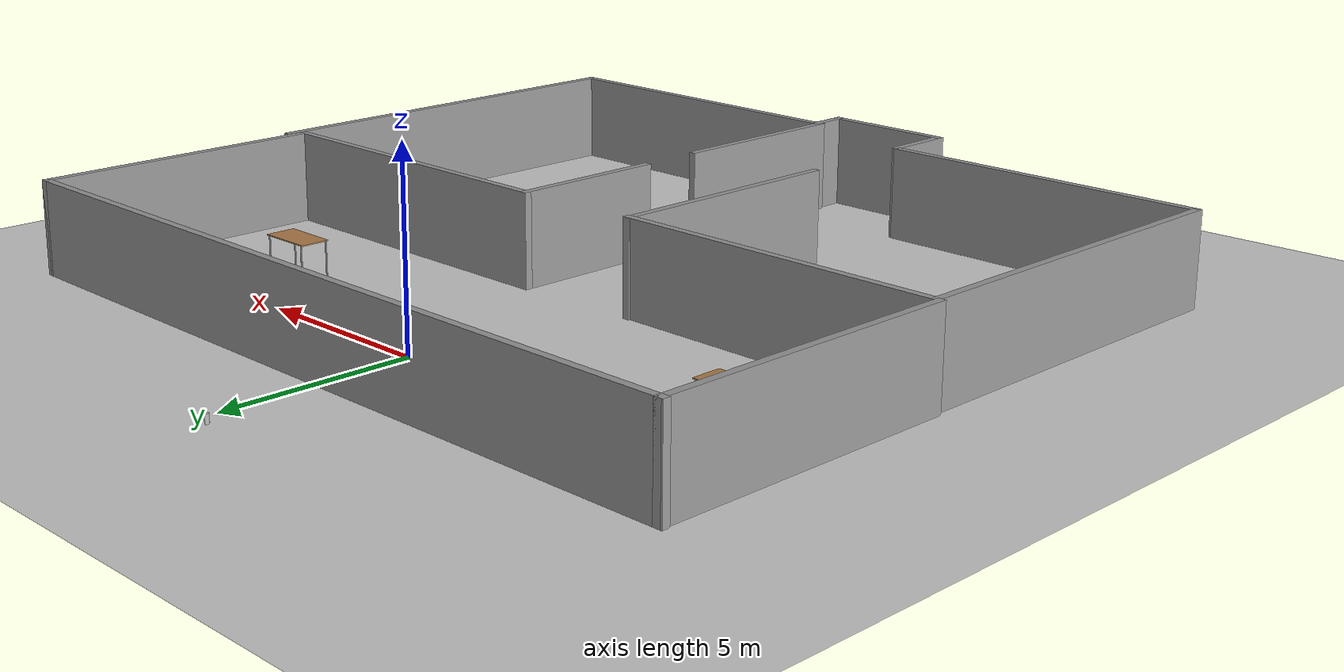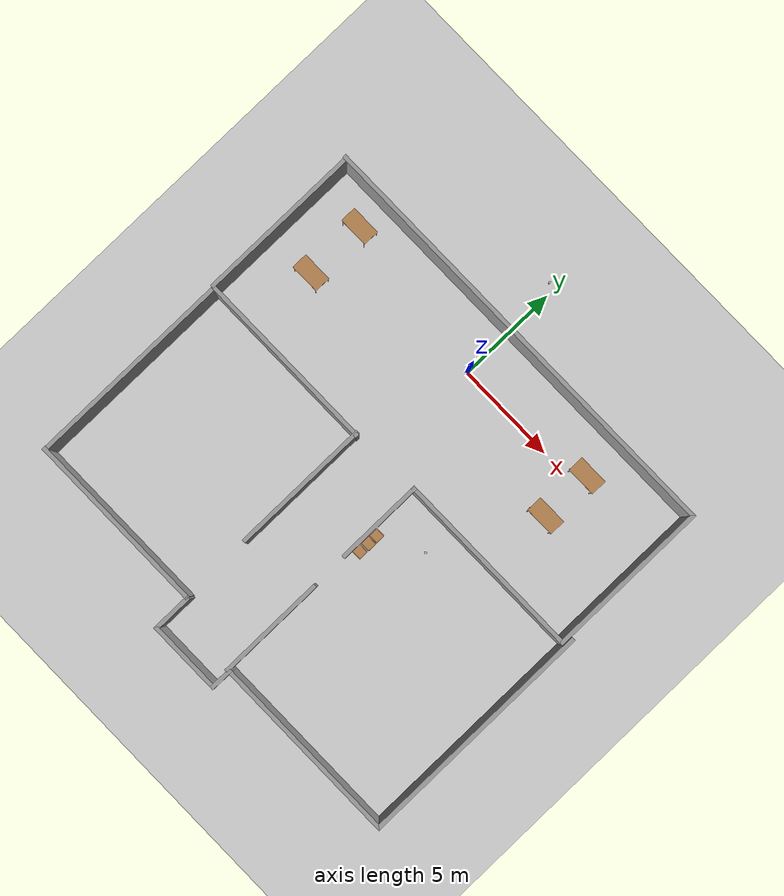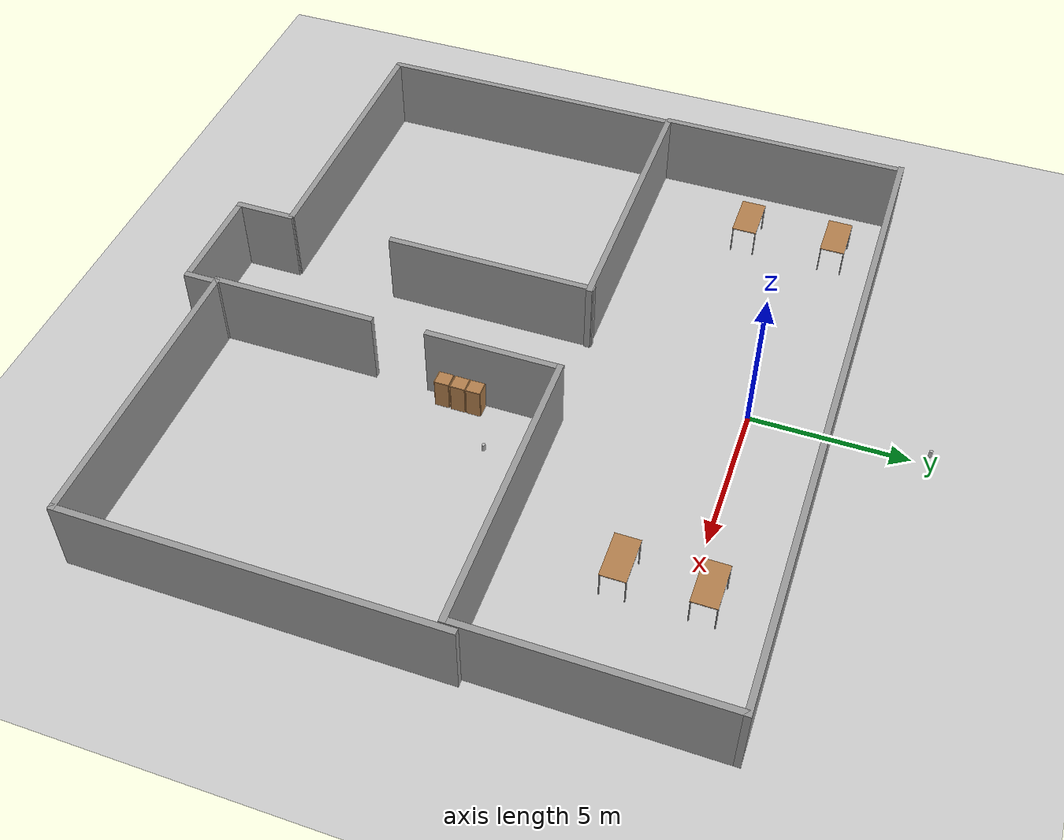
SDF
<sdf version="1.4">
 <world name="default">
  <light name="sun" type="directional">
   <pose>0 0 10 0 -0 0</pose>
   <diffuse>0.8 0.8 0.8 1</diffuse>
   <specular>0.2 0.2 0.2 1</specular>
   <attenuation>
    <range>1000</range>
    <constant>0.9</constant>
    <linear>0.01</linear>
    <quadratic>0.001</quadratic>
   </attenuation>
   <direction>-0.5 0.1 -0.9</direction>
  </light>
  <model name="ground_plane">
   <static>1</static>
   <link name="link">
    <collision name="collision">
     <geometry><plane><normal>0 0 1</normal><size>100 100</size></plane></geometry>
     <surface><friction><ode><mu>100</mu><mu2>50</mu2></ode></friction></surface>
    </collision>
    <visual name="visual">
     <cast_shadows>0</cast_shadows>
     <geometry><plane><normal>0 0 1</normal><size>100 100</size></plane></geometry>
     <material>
      <script><uri>file://media/materials/scripts/gazebo.material</uri><name>Gazebo/Grey</name></script>
     </material>
    </visual>
    <velocity_decay><linear>0</linear><angular>0</angular></velocity_decay>
   </link>
  </model>
  <physics type="ode">
   <max_step_size>0.001</max_step_size>
   <real_time_factor>1</real_time_factor>
   <real_time_update_rate>1000</real_time_update_rate>
   <gravity>0 0 -9.8</gravity>
  </physics>
  <scene><ambient>0.4 0.4 0.4 1</ambient><background>0.7 0.7 0.7 1</background><shadows>1</shadows></scene>
  <spherical_coordinates>
   <surface_model>EARTH_WGS84</surface_model>
   <latitude_deg>0</latitude_deg>
   <longitude_deg>0</longitude_deg>
   <elevation>0</elevation>
   <heading_deg>0</heading_deg>
  </spherical_coordinates>
  <model name="TEST2">
   <link name="Wall_50">
    <collision name="Wall_50_Collision">
     <geometry><box><size>21.9732 0.2 2.5</size></box></geometry>
     <pose>0 0 1.25 0 -0 0</pose>
    </collision>
    <visual name="Wall_50_Visual">
     <pose>0 0 1.25 0 -0 0</pose>
     <geometry><box><size>21.9732 0.2 2.5</size></box></geometry>
     <material>
      <script><uri>file://media/materials/scripts/gazebo.material</uri><name>Gazebo/Grey</name></script>
     </material>
    </visual>
    <velocity_decay><linear>0</linear><angular>0</angular></velocity_decay>
    <pose>-0.67806 9.43433 0 0 -0 0</pose>
   </link>
   <link name="Wall_51">
    <collision name="Wall_51_Collision">
     <geometry><box><size>8.10906 0.2 2.5</size></box></geometry>
     <pose>0 0 1.25 0 -0 0</pose>
    </collision>
    <visual name="Wall_51_Visual">
     <pose>0 0 1.25 0 -0 0</pose>
     <geometry><box><size>8.10906 0.2 2.5</size></box></geometry>
     <material>
      <script><uri>file://media/materials/scripts/gazebo.material</uri><name>Gazebo/Grey</name></script>
     </material>
    </visual>
    <velocity_decay><linear>0</linear><angular>0</angular></velocity_decay>
    <pose>10.2085 5.4798 0 0 0 -1.5708</pose>
   </link>
   <link name="Wall_52">
    <collision name="Wall_52_Collision">
     <geometry><box><size>9.45826 0.2 2.5</size></box></geometry>
     <pose>0 0 1.25 0 -0 0</pose>
    </collision>
    <visual name="Wall_52_Visual">
     <pose>0 0 1.25 0 -0 0</pose>
     <geometry><box><size>9.45826 0.2 2.5</size></box></geometry>
     <material>
      <script><uri>file://media/materials/scripts/gazebo.material</uri><name>Gazebo/Grey</name></script>
     </material>
    </visual>
    <velocity_decay><linear>0</linear><angular>0</angular></velocity_decay>
    <pose>5.57941 1.52526 0 0 -0 3.14159</pose>
   </link>
   <link name="Wall_53">
    <collision name="Wall_53_Collision">
     <geometry><box><size>4.38715 0.2 2.5</size></box></geometry>
     <pose>0 0 1.25 0 -0 0</pose>
    </collision>
    <visual name="Wall_53_Visual">
     <pose>0 0 1.25 0 -0 0</pose>
     <geometry><box><size>4.38715 0.2 2.5</size></box></geometry>
     <material>
      <script><uri>file://media/materials/scripts/gazebo.material</uri><name>Gazebo/Grey</name></script>
     </material>
    </visual>
    <velocity_decay><linear>0</linear><angular>0</angular></velocity_decay>
    <pose>0.950277 -0.568314 0 0 0 -1.5708</pose>
   </link>
   <link name="Wall_55">
    <collision name="Wall_55_Collision">
     <geometry><box><size>5.36415 0.2 2.5</size></box></geometry>
     <pose>0 0 1.25 0 -0 0</pose>
    </collision>
    <visual name="Wall_55_Visual">
     <pose>0 0 1.25 0 -0 0</pose>
     <geometry><box><size>5.36415 0.2 2.5</size></box></geometry>
     <material>
      <script><uri>file://media/materials/scripts/gazebo.material</uri><name>Gazebo/Grey</name></script>
     </material>
    </visual>
    <velocity_decay><linear>0</linear><angular>0</angular></velocity_decay>
    <pose>0.996801 -7.15145 0 0 0 -1.5708</pose>
   </link>
   <link name="Wall_56">
    <collision name="Wall_56_Collision">
     <geometry><box><size>9.64435 0.2 2.5</size></box></geometry>
     <pose>0 0 1.25 0 -0 0</pose>
    </collision>
    <visual name="Wall_56_Visual">
     <pose>0 0 1.25 0 -0 0</pose>
     <geometry><box><size>9.64435 0.2 2.5</size></box></geometry>
     <material>
      <script><uri>file://media/materials/scripts/gazebo.material</uri><name>Gazebo/Grey</name></script>
     </material>
    </visual>
    <velocity_decay><linear>0</linear><angular>0</angular></velocity_decay>
    <pose>5.71898 -9.73353 0 0 -0 0</pose>
   </link>
   <link name="Wall_57">
    <collision name="Wall_57_Collision">
     <geometry><box><size>11.831 0.2 2.5</size></box></geometry>
     <pose>0 0 1.25 0 -0 0</pose>
    </collision>
    <visual name="Wall_57_Visual">
     <pose>0 0 1.25 0 -0 0</pose>
     <geometry><box><size>11.831 0.2 2.5</size></box></geometry>
     <material>
      <script><uri>file://media/materials/scripts/gazebo.material</uri><name>Gazebo/Grey</name></script>
     </material>
    </visual>
    <velocity_decay><linear>0</linear><angular>0</angular></velocity_decay>
    <pose>10.4412 -3.91804 0 0 -0 1.5708</pose>
   </link>
   <link name="Wall_59">
    <collision name="Wall_59_Collision">
     <geometry><box><size>6.89944 0.2 2.5</size></box></geometry>
     <pose>0 0 1.25 0 -0 0</pose>
    </collision>
    <visual name="Wall_59_Visual">
     <pose>0 0 1.25 0 -0 0</pose>
     <geometry><box><size>6.89944 0.2 2.5</size></box></geometry>
     <material>
      <script><uri>file://media/materials/scripts/gazebo.material</uri><name>Gazebo/Grey</name></script>
     </material>
    </visual>
    <velocity_decay><linear>0</linear><angular>0</angular></velocity_decay>
    <pose>-2.53902 -1.96403 0 0 0 -1.5708</pose>
   </link>
   <link name="Wall_63">
    <collision name="Wall_63_Collision">
     <geometry><box><size>9.13259 0.2 2.5</size></box></geometry>
     <pose>0 0 1.25 0 -0 0</pose>
    </collision>
    <visual name="Wall_63_Visual">
     <pose>0 0 1.25 0 -0 0</pose>
     <geometry><box><size>9.13259 0.2 2.5</size></box></geometry>
     <material>
      <script><uri>file://media/materials/scripts/gazebo.material</uri><name>Gazebo/Grey</name></script>
     </material>
    </visual>
    <velocity_decay><linear>0</linear><angular>0</angular></velocity_decay>
    <pose>-6.95879 1.33917 0 0 -0 3.14159</pose>
   </link>
   <link name="Wall_64">
    <collision name="Wall_64_Collision">
     <geometry><box><size>10.3887 0.2 2.5</size></box></geometry>
     <pose>0 0 1.25 0 -0 0</pose>
    </collision>
    <visual name="Wall_64_Visual">
     <pose>0 0 1.25 0 -0 0</pose>
     <geometry><box><size>10.3887 0.2 2.5</size></box></geometry>
     <material>
      <script><uri>file://media/materials/scripts/gazebo.material</uri><name>Gazebo/Grey</name></script>
     </material>
    </visual>
    <velocity_decay><linear>0</linear><angular>0</angular></velocity_decay>
    <pose>-11.4251 -3.7552 0 0 0 -1.5708</pose>
   </link>
   <link name="Wall_65">
    <collision name="Wall_65_Collision">
     <geometry><box><size>9.08607 0.2 2.5</size></box></geometry>
     <pose>0 0 1.25 0 -0 0</pose>
    </collision>
    <visual name="Wall_65_Visual">
     <pose>0 0 1.25 0 -0 0</pose>
     <geometry><box><size>9.08607 0.2 2.5</size></box></geometry>
     <material>
      <script><uri>file://media/materials/scripts/gazebo.material</uri><name>Gazebo/Grey</name></script>
     </material>
    </visual>
    <velocity_decay><linear>0</linear><angular>0</angular></velocity_decay>
    <pose>-6.98205 -8.84957 0 0 -0 0</pose>
   </link>
   <link name="Wall_67">
    <collision name="Wall_67_Collision">
     <geometry><box><size>8.24864 0.2 2.5</size></box></geometry>
     <pose>0 0 1.25 0 -0 0</pose>
    </collision>
    <visual name="Wall_67_Visual">
     <pose>0 0 1.25 0 -0 0</pose>
     <geometry><box><size>8.24864 0.2 2.5</size></box></geometry>
     <material>
      <script><uri>file://media/materials/scripts/gazebo.material</uri><name>Gazebo/Grey</name></script>
     </material>
    </visual>
    <velocity_decay><linear>0</linear><angular>0</angular></velocity_decay>
    <pose>-11.5181 5.41001 0 0 0 -1.5708</pose>
   </link>
   <link name="Wall_69">
    <collision name="Wall_69_Collision">
     <geometry><box><size>2.01443 0.2 2.5</size></box></geometry>
     <pose>0 0 1.25 0 -0 0</pose>
    </collision>
    <visual name="Wall_69_Visual">
     <pose>0 0 1.25 0 -0 0</pose>
     <geometry><box><size>2.01443 0.2 2.5</size></box></geometry>
     <material>
      <script><uri>file://media/materials/scripts/gazebo.material</uri><name>Gazebo/Grey</name></script>
     </material>
    </visual>
    <velocity_decay><linear>0</linear><angular>0</angular></velocity_decay>
    <pose>-2.44597 -9.80331 0 0 0 -1.5708</pose>
   </link>
   <link name="Wall_70">
    <collision name="Wall_70_Collision">
     <geometry><box><size>3.73582 0.2 2.5</size></box></geometry>
     <pose>0 0 1.25 0 -0 0</pose>
    </collision>
    <visual name="Wall_70_Visual">
     <pose>0 0 1.25 0 -0 0</pose>
     <geometry><box><size>3.73582 0.2 2.5</size></box></geometry>
     <material>
      <script><uri>file://media/materials/scripts/gazebo.material</uri><name>Gazebo/Grey</name></script>
     </material>
    </visual>
    <velocity_decay><linear>0</linear><angular>0</angular></velocity_decay>
    <pose>-0.67806 -10.7105 0 0 -0 0</pose>
   </link>
   <link name="Wall_71">
    <collision name="Wall_71_Collision">
     <geometry><box><size>1.177 0.2 2.5</size></box></geometry>
     <pose>0 0 1.25 0 -0 0</pose>
    </collision>
    <visual name="Wall_71_Visual">
     <pose>0 0 1.25 0 -0 0</pose>
     <geometry><box><size>1.177 0.2 2.5</size></box></geometry>
     <material>
      <script><uri>file://media/materials/scripts/gazebo.material</uri><name>Gazebo/Grey</name></script>
     </material>
    </visual>
    <velocity_decay><linear>0</linear><angular>0</angular></velocity_decay>
    <pose>1.08985 -10.222 0 0 -0 1.5708</pose>
   </link>
   <static>1</static>
   <pose>1.16005 -6.95394 0 0 -0 0</pose>
  </model>
  <model name="beer">
   <link name="link">
    <pose>0 0 0.115 0 -0 0</pose>
    <inertial>
     <mass>0.39</mass>
     <inertia><ixx>0.00058</ixx><ixy>0</ixy><ixz>0</ixz><iyy>0.00058</iyy><iyz>0</iyz><izz>0.00019</izz></inertia>
    </inertial>
    <collision name="collision">
     <geometry><cylinder><radius>0.055</radius><length>0.23</length></cylinder></geometry>
    </collision>
    <visual name="visual">
     <geometry><cylinder><radius>0.055</radius><length>0.23</length></cylinder></geometry>
     <material>
      <script>
       <uri>model://beer/materials/scripts</uri>
       <uri>model://beer/materials/textures</uri>
       <name>Beer/Diffuse</name>
      </script>
     </material>
    </visual>
    <velocity_decay><linear>0</linear><angular>0</angular></velocity_decay>
   </link>
   <pose>4.49155 -6.96246 0.77499 -1e-06 2.6e-05 0.01236</pose>
   <static>0</static>
  </model>
  <model name="beer_0">
   <link name="link">
    <pose>0 0 0.115 0 -0 0</pose>
    <inertial>
     <mass>0.39</mass>
     <inertia><ixx>0.00058</ixx><ixy>0</ixy><ixz>0</ixz><iyy>0.00058</iyy><iyz>0</iyz><izz>0.00019</izz></inertia>
    </inertial>
    <collision name="collision">
     <geometry><cylinder><radius>0.055</radius><length>0.23</length></cylinder></geometry>
    </collision>
    <visual name="visual">
     <geometry><cylinder><radius>0.055</radius><length>0.23</length></cylinder></geometry>
     <material>
      <script>
       <uri>model://beer/materials/scripts</uri>
       <uri>model://beer/materials/textures</uri>
       <name>Beer/Diffuse</name>
      </script>
     </material>
    </visual>
    <velocity_decay><linear>0</linear><angular>0</angular></velocity_decay>
   </link>
   <pose>-0.359145 5.49517 -7e-06 -1e-06 6.46235e-27 -3.4e-05</pose>
   <static>0</static>
  </model>
  <model name="cabinet">
   <static>1</static>
   <link name="cabinet_bottom_plate">
    <inertial>
     <pose>0 0 -1 0 -0 0</pose>
     <inertia><ixx>2.05</ixx><ixy>0</ixy><ixz>0</ixz><iyy>2.05</iyy><iyz>0</iyz><izz>2.05</izz></inertia>
     <mass>25</mass>
    </inertial>
    <collision name="cabinet_bottom_plate_geom">
     <pose>0 0 0.01 0 -0 0</pose>
     <geometry><box><size>0.45 0.45 0.02</size></box></geometry>
    </collision>
    <visual name="cabinet_bottom_plate_geom_visual">
     <pose>0 0 0.01 0 -0 0</pose>
     <geometry><box><size>0.45 0.45 0.02</size></box></geometry>
     <material>
      <script><uri>file://media/materials/scripts/gazebo.material</uri><name>Gazebo/Wood</name></script>
     </material>
    </visual>
    <collision name="cabinet_bottom_plate_geom_cabinet_back_plate">
     <pose>0.235 0 0.51 0 -0 0</pose>
     <geometry><box><size>0.02 0.45 1.02</size></box></geometry>
    </collision>
    <visual name="cabinet_bottom_plate_geom_cabinet_back_plate_visual">
     <pose>0.235 0 0.51 0 -0 0</pose>
     <geometry><box><size>0.02 0.45 1.02</size></box></geometry>
     <material>
      <script><uri>file://media/materials/scripts/gazebo.material</uri><name>Gazebo/Wood</name></script>
     </material>
    </visual>
    <collision name="cabinet_bottom_plate_geom_cabinet_left_plate">
     <pose>0 0.235 0.51 0 -0 0</pose>
     <geometry><box><size>0.45 0.02 1.02</size></box></geometry>
    </collision>
    <visual name="cabinet_bottom_plate_geom_cabinet_left_plate_visual">
     <pose>0 0.235 0.51 0 -0 0</pose>
     <geometry><box><size>0.45 0.02 1.02</size></box></geometry>
     <material>
      <script><uri>file://media/materials/scripts/gazebo.material</uri><name>Gazebo/Wood</name></script>
     </material>
    </visual>
    <collision name="cabinet_bottom_plate_geom_cabinet_middle_plate">
     <pose>0 0 0.51 0 -0 0</pose>
     <geometry><box><size>0.45 0.45 0.02</size></box></geometry>
    </collision>
    <visual name="cabinet_bottom_plate_geom_cabinet_middle_plate_visual">
     <pose>0 0 0.51 0 -0 0</pose>
     <geometry><box><size>0.45 0.45 0.02</size></box></geometry>
     <material>
      <script><uri>file://media/materials/scripts/gazebo.material</uri><name>Gazebo/Wood</name></script>
     </material>
    </visual>
    <collision name="cabinet_bottom_plate_geom_cabinet_right_plate">
     <pose>0 -0.235 0.51 0 -0 0</pose>
     <geometry><box><size>0.45 0.02 1.02</size></box></geometry>
    </collision>
    <visual name="cabinet_bottom_plate_geom_cabinet_right_plate_visual">
     <pose>0 -0.235 0.51 0 -0 0</pose>
     <geometry><box><size>0.45 0.02 1.02</size></box></geometry>
     <material>
      <script><uri>file://media/materials/scripts/gazebo.material</uri><name>Gazebo/Wood</name></script>
     </material>
    </visual>
    <collision name="cabinet_bottom_plate_geom_cabinet_top_plate">
     <pose>0 0 1.01 0 -0 0</pose>
     <geometry><box><size>0.45 0.45 0.02</size></box></geometry>
    </collision>
    <visual name="cabinet_bottom_plate_geom_cabinet_top_plate_visual">
     <pose>0 0 1.01 0 -0 0</pose>
     <geometry><box><size>0.45 0.45 0.02</size></box></geometry>
     <material>
      <script><uri>file://media/materials/scripts/gazebo.material</uri><name>Gazebo/Wood</name></script>
     </material>
    </visual>
    <velocity_decay><linear>0</linear><angular>0</angular></velocity_decay>
   </link>
   <pose>2.45179 -7.9983 0 0 -0 0</pose>
  </model>
  <model name="cabinet_0">
   <static>1</static>
   <link name="cabinet_bottom_plate">
    <inertial>
     <pose>0 0 -1 0 -0 0</pose>
     <inertia><ixx>2.05</ixx><ixy>0</ixy><ixz>0</ixz><iyy>2.05</iyy><iyz>0</iyz><izz>2.05</izz></inertia>
     <mass>25</mass>
    </inertial>
    <collision name="cabinet_bottom_plate_geom">
     <pose>0 0 0.01 0 -0 0</pose>
     <geometry><box><size>0.45 0.45 0.02</size></box></geometry>
    </collision>
    <visual name="cabinet_bottom_plate_geom_visual">
     <pose>0 0 0.01 0 -0 0</pose>
     <geometry><box><size>0.45 0.45 0.02</size></box></geometry>
     <material>
      <script><uri>file://media/materials/scripts/gazebo.material</uri><name>Gazebo/Wood</name></script>
     </material>
    </visual>
    <collision name="cabinet_bottom_plate_geom_cabinet_back_plate">
     <pose>0.235 0 0.51 0 -0 0</pose>
     <geometry><box><size>0.02 0.45 1.02</size></box></geometry>
    </collision>
    <visual name="cabinet_bottom_plate_geom_cabinet_back_plate_visual">
     <pose>0.235 0 0.51 0 -0 0</pose>
     <geometry><box><size>0.02 0.45 1.02</size></box></geometry>
     <material>
      <script><uri>file://media/materials/scripts/gazebo.material</uri><name>Gazebo/Wood</name></script>
     </material>
    </visual>
    <collision name="cabinet_bottom_plate_geom_cabinet_left_plate">
     <pose>0 0.235 0.51 0 -0 0</pose>
     <geometry><box><size>0.45 0.02 1.02</size></box></geometry>
    </collision>
    <visual name="cabinet_bottom_plate_geom_cabinet_left_plate_visual">
     <pose>0 0.235 0.51 0 -0 0</pose>
     <geometry><box><size>0.45 0.02 1.02</size></box></geometry>
     <material>
      <script><uri>file://media/materials/scripts/gazebo.material</uri><name>Gazebo/Wood</name></script>
     </material>
    </visual>
    <collision name="cabinet_bottom_plate_geom_cabinet_middle_plate">
     <pose>0 0 0.51 0 -0 0</pose>
     <geometry><box><size>0.45 0.45 0.02</size></box></geometry>
    </collision>
    <visual name="cabinet_bottom_plate_geom_cabinet_middle_plate_visual">
     <pose>0 0 0.51 0 -0 0</pose>
     <geometry><box><size>0.45 0.45 0.02</size></box></geometry>
     <material>
      <script><uri>file://media/materials/scripts/gazebo.material</uri><name>Gazebo/Wood</name></script>
     </material>
    </visual>
    <collision name="cabinet_bottom_plate_geom_cabinet_right_plate">
     <pose>0 -0.235 0.51 0 -0 0</pose>
     <geometry><box><size>0.45 0.02 1.02</size></box></geometry>
    </collision>
    <visual name="cabinet_bottom_plate_geom_cabinet_right_plate_visual">
     <pose>0 -0.235 0.51 0 -0 0</pose>
     <geometry><box><size>0.45 0.02 1.02</size></box></geometry>
     <material>
      <script><uri>file://media/materials/scripts/gazebo.material</uri><name>Gazebo/Wood</name></script>
     </material>
    </visual>
    <collision name="cabinet_bottom_plate_geom_cabinet_top_plate">
     <pose>0 0 1.01 0 -0 0</pose>
     <geometry><box><size>0.45 0.45 0.02</size></box></geometry>
    </collision>
    <visual name="cabinet_bottom_plate_geom_cabinet_top_plate_visual">
     <pose>0 0 1.01 0 -0 0</pose>
     <geometry><box><size>0.45 0.45 0.02</size></box></geometry>
     <material>
      <script><uri>file://media/materials/scripts/gazebo.material</uri><name>Gazebo/Wood</name></script>
     </material>
    </visual>
    <velocity_decay><linear>0</linear><angular>0</angular></velocity_decay>
   </link>
   <pose>2.44936 -8.49993 0 0 -0 0</pose>
  </model>
  <model name="cabinet_1">
   <static>1</static>
   <link name="cabinet_bottom_plate">
    <inertial>
     <pose>0 0 -1 0 -0 0</pose>
     <inertia><ixx>2.05</ixx><ixy>0</ixy><ixz>0</ixz><iyy>2.05</iyy><iyz>0</iyz><izz>2.05</izz></inertia>
     <mass>25</mass>
    </inertial>
    <collision name="cabinet_bottom_plate_geom">
     <pose>0 0 0.01 0 -0 0</pose>
     <geometry><box><size>0.45 0.45 0.02</size></box></geometry>
    </collision>
    <visual name="cabinet_bottom_plate_geom_visual">
     <pose>0 0 0.01 0 -0 0</pose>
     <geometry><box><size>0.45 0.45 0.02</size></box></geometry>
     <material>
      <script><uri>file://media/materials/scripts/gazebo.material</uri><name>Gazebo/Wood</name></script>
     </material>
    </visual>
    <collision name="cabinet_bottom_plate_geom_cabinet_back_plate">
     <pose>0.235 0 0.51 0 -0 0</pose>
     <geometry><box><size>0.02 0.45 1.02</size></box></geometry>
    </collision>
    <visual name="cabinet_bottom_plate_geom_cabinet_back_plate_visual">
     <pose>0.235 0 0.51 0 -0 0</pose>
     <geometry><box><size>0.02 0.45 1.02</size></box></geometry>
     <material>
      <script><uri>file://media/materials/scripts/gazebo.material</uri><name>Gazebo/Wood</name></script>
     </material>
    </visual>
    <collision name="cabinet_bottom_plate_geom_cabinet_left_plate">
     <pose>0 0.235 0.51 0 -0 0</pose>
     <geometry><box><size>0.45 0.02 1.02</size></box></geometry>
    </collision>
    <visual name="cabinet_bottom_plate_geom_cabinet_left_plate_visual">
     <pose>0 0.235 0.51 0 -0 0</pose>
     <geometry><box><size>0.45 0.02 1.02</size></box></geometry>
     <material>
      <script><uri>file://media/materials/scripts/gazebo.material</uri><name>Gazebo/Wood</name></script>
     </material>
    </visual>
    <collision name="cabinet_bottom_plate_geom_cabinet_middle_plate">
     <pose>0 0 0.51 0 -0 0</pose>
     <geometry><box><size>0.45 0.45 0.02</size></box></geometry>
    </collision>
    <visual name="cabinet_bottom_plate_geom_cabinet_middle_plate_visual">
     <pose>0 0 0.51 0 -0 0</pose>
     <geometry><box><size>0.45 0.45 0.02</size></box></geometry>
     <material>
      <script><uri>file://media/materials/scripts/gazebo.material</uri><name>Gazebo/Wood</name></script>
     </material>
    </visual>
    <collision name="cabinet_bottom_plate_geom_cabinet_right_plate">
     <pose>0 -0.235 0.51 0 -0 0</pose>
     <geometry><box><size>0.45 0.02 1.02</size></box></geometry>
    </collision>
    <visual name="cabinet_bottom_plate_geom_cabinet_right_plate_visual">
     <pose>0 -0.235 0.51 0 -0 0</pose>
     <geometry><box><size>0.45 0.02 1.02</size></box></geometry>
     <material>
      <script><uri>file://media/materials/scripts/gazebo.material</uri><name>Gazebo/Wood</name></script>
     </material>
    </visual>
    <collision name="cabinet_bottom_plate_geom_cabinet_top_plate">
     <pose>0 0 1.01 0 -0 0</pose>
     <geometry><box><size>0.45 0.45 0.02</size></box></geometry>
    </collision>
    <visual name="cabinet_bottom_plate_geom_cabinet_top_plate_visual">
     <pose>0 0 1.01 0 -0 0</pose>
     <geometry><box><size>0.45 0.45 0.02</size></box></geometry>
     <material>
      <script><uri>file://media/materials/scripts/gazebo.material</uri><name>Gazebo/Wood</name></script>
     </material>
    </visual>
    <velocity_decay><linear>0</linear><angular>0</angular></velocity_decay>
   </link>
   <pose>2.44183 -9.02491 0 0 -0 0</pose>
  </model>
  <model name="table">
   <static>1</static>
   <link name="link">
    <collision name="surface">
     <pose>0 0 1 0 -0 0</pose>
     <geometry><box><size>1.5 0.8 0.03</size></box></geometry>
     <surface><friction><ode><mu>0.6</mu><mu2>0.6</mu2></ode></friction></surface>
    </collision>
    <visual name="visual1">
     <pose>0 0 1 0 -0 0</pose>
     <geometry><box><size>1.5 0.8 0.03</size></box></geometry>
     <material>
      <script><uri>file://media/materials/scripts/gazebo.material</uri><name>Gazebo/Wood</name></script>
     </material>
    </visual>
    <collision name="front_left_leg">
     <pose>0.68 0.38 0.5 0 -0 0</pose>
     <geometry><cylinder><radius>0.02</radius><length>1</length></cylinder></geometry>
    </collision>
    <visual name="front_left_leg">
     <pose>0.68 0.38 0.5 0 -0 0</pose>
     <geometry><cylinder><radius>0.02</radius><length>1</length></cylinder></geometry>
     <material>
      <script><uri>file://media/materials/scripts/gazebo.material</uri><name>Gazebo/Grey</name></script>
     </material>
    </visual>
    <collision name="front_right_leg">
     <pose>0.68 -0.38 0.5 0 -0 0</pose>
     <geometry><cylinder><radius>0.02</radius><length>1</length></cylinder></geometry>
    </collision>
    <visual name="front_right_leg">
     <pose>0.68 -0.38 0.5 0 -0 0</pose>
     <geometry><cylinder><radius>0.02</radius><length>1</length></cylinder></geometry>
     <material>
      <script><uri>file://media/materials/scripts/gazebo.material</uri><name>Gazebo/Grey</name></script>
     </material>
    </visual>
    <collision name="back_right_leg">
     <pose>-0.68 -0.38 0.5 0 -0 0</pose>
     <geometry><cylinder><radius>0.02</radius><length>1</length></cylinder></geometry>
    </collision>
    <visual name="back_right_leg">
     <pose>-0.68 -0.38 0.5 0 -0 0</pose>
     <geometry><cylinder><radius>0.02</radius><length>1</length></cylinder></geometry>
     <material>
      <script><uri>file://media/materials/scripts/gazebo.material</uri><name>Gazebo/Grey</name></script>
     </material>
    </visual>
    <collision name="back_left_leg">
     <pose>-0.68 0.38 0.5 0 -0 0</pose>
     <geometry><cylinder><radius>0.02</radius><length>1</length></cylinder></geometry>
    </collision>
    <visual name="back_left_leg">
     <pose>-0.68 0.38 0.5 0 -0 0</pose>
     <geometry><cylinder><radius>0.02</radius><length>1</length></cylinder></geometry>
     <material>
      <script><uri>file://media/materials/scripts/gazebo.material</uri><name>Gazebo/Grey</name></script>
     </material>
    </visual>
    <velocity_decay><linear>0</linear><angular>0</angular></velocity_decay>
   </link>
   <pose>-8 1 0 0 -0 0</pose>
  </model>
  <model name="table_0">
   <static>1</static>
   <link name="link">
    <collision name="surface">
     <pose>0 0 1 0 -0 0</pose>
     <geometry><box><size>1.5 0.8 0.03</size></box></geometry>
     <surface><friction><ode><mu>0.6</mu><mu2>0.6</mu2></ode></friction></surface>
    </collision>
    <visual name="visual1">
     <pose>0 0 1 0 -0 0</pose>
     <geometry><box><size>1.5 0.8 0.03</size></box></geometry>
     <material>
      <script><uri>file://media/materials/scripts/gazebo.material</uri><name>Gazebo/Wood</name></script>
     </material>
    </visual>
    <collision name="front_left_leg">
     <pose>0.68 0.38 0.5 0 -0 0</pose>
     <geometry><cylinder><radius>0.02</radius><length>1</length></cylinder></geometry>
    </collision>
    <visual name="front_left_leg">
     <pose>0.68 0.38 0.5 0 -0 0</pose>
     <geometry><cylinder><radius>0.02</radius><length>1</length></cylinder></geometry>
     <material>
      <script><uri>file://media/materials/scripts/gazebo.material</uri><name>Gazebo/Grey</name></script>
     </material>
    </visual>
    <collision name="front_right_leg">
     <pose>0.68 -0.38 0.5 0 -0 0</pose>
     <geometry><cylinder><radius>0.02</radius><length>1</length></cylinder></geometry>
    </collision>
    <visual name="front_right_leg">
     <pose>0.68 -0.38 0.5 0 -0 0</pose>
     <geometry><cylinder><radius>0.02</radius><length>1</length></cylinder></geometry>
     <material>
      <script><uri>file://media/materials/scripts/gazebo.material</uri><name>Gazebo/Grey</name></script>
     </material>
    </visual>
    <collision name="back_right_leg">
     <pose>-0.68 -0.38 0.5 0 -0 0</pose>
     <geometry><cylinder><radius>0.02</radius><length>1</length></cylinder></geometry>
    </collision>
    <visual name="back_right_leg">
     <pose>-0.68 -0.38 0.5 0 -0 0</pose>
     <geometry><cylinder><radius>0.02</radius><length>1</length></cylinder></geometry>
     <material>
      <script><uri>file://media/materials/scripts/gazebo.material</uri><name>Gazebo/Grey</name></script>
     </material>
    </visual>
    <collision name="back_left_leg">
     <pose>-0.68 0.38 0.5 0 -0 0</pose>
     <geometry><cylinder><radius>0.02</radius><length>1</length></cylinder></geometry>
    </collision>
    <visual name="back_left_leg">
     <pose>-0.68 0.38 0.5 0 -0 0</pose>
     <geometry><cylinder><radius>0.02</radius><length>1</length></cylinder></geometry>
     <material>
      <script><uri>file://media/materials/scripts/gazebo.material</uri><name>Gazebo/Grey</name></script>
     </material>
    </visual>
    <velocity_decay><linear>0</linear><angular>0</angular></velocity_decay>
   </link>
   <pose>-8 -2 0 0 -0 0</pose>
  </model>
  <model name="table_1">
   <static>1</static>
   <link name="link">
    <collision name="surface">
     <pose>0 0 1 0 -0 0</pose>
     <geometry><box><size>1.5 0.8 0.03</size></box></geometry>
     <surface><friction><ode><mu>0.6</mu><mu2>0.6</mu2></ode></friction></surface>
    </collision>
    <visual name="visual1">
     <pose>0 0 1 0 -0 0</pose>
     <geometry><box><size>1.5 0.8 0.03</size></box></geometry>
     <material>
      <script><uri>file://media/materials/scripts/gazebo.material</uri><name>Gazebo/Wood</name></script>
     </material>
    </visual>
    <collision name="front_left_leg">
     <pose>0.68 0.38 0.5 0 -0 0</pose>
     <geometry><cylinder><radius>0.02</radius><length>1</length></cylinder></geometry>
    </collision>
    <visual name="front_left_leg">
     <pose>0.68 0.38 0.5 0 -0 0</pose>
     <geometry><cylinder><radius>0.02</radius><length>1</length></cylinder></geometry>
     <material>
      <script><uri>file://media/materials/scripts/gazebo.material</uri><name>Gazebo/Grey</name></script>
     </material>
    </visual>
    <collision name="front_right_leg">
     <pose>0.68 -0.38 0.5 0 -0 0</pose>
     <geometry><cylinder><radius>0.02</radius><length>1</length></cylinder></geometry>
    </collision>
    <visual name="front_right_leg">
     <pose>0.68 -0.38 0.5 0 -0 0</pose>
     <geometry><cylinder><radius>0.02</radius><length>1</length></cylinder></geometry>
     <material>
      <script><uri>file://media/materials/scripts/gazebo.material</uri><name>Gazebo/Grey</name></script>
     </material>
    </visual>
    <collision name="back_right_leg">
     <pose>-0.68 -0.38 0.5 0 -0 0</pose>
     <geometry><cylinder><radius>0.02</radius><length>1</length></cylinder></geometry>
    </collision>
    <visual name="back_right_leg">
     <pose>-0.68 -0.38 0.5 0 -0 0</pose>
     <geometry><cylinder><radius>0.02</radius><length>1</length></cylinder></geometry>
     <material>
      <script><uri>file://media/materials/scripts/gazebo.material</uri><name>Gazebo/Grey</name></script>
     </material>
    </visual>
    <collision name="back_left_leg">
     <pose>-0.68 0.38 0.5 0 -0 0</pose>
     <geometry><cylinder><radius>0.02</radius><length>1</length></cylinder></geometry>
    </collision>
    <visual name="back_left_leg">
     <pose>-0.68 0.38 0.5 0 -0 0</pose>
     <geometry><cylinder><radius>0.02</radius><length>1</length></cylinder></geometry>
     <material>
      <script><uri>file://media/materials/scripts/gazebo.material</uri><name>Gazebo/Grey</name></script>
     </material>
    </visual>
    <velocity_decay><linear>0</linear><angular>0</angular></velocity_decay>
   </link>
   <pose>7 0.558773 0 0 -0 0</pose>
  </model>
  <model name="table_2">
   <static>1</static>
   <link name="link">
    <collision name="surface">
     <pose>0 0 1 0 -0 0</pose>
     <geometry><box><size>1.5 0.8 0.03</size></box></geometry>
     <surface><friction><ode><mu>0.6</mu><mu2>0.6</mu2></ode></friction></surface>
    </collision>
    <visual name="visual1">
     <pose>0 0 1 0 -0 0</pose>
     <geometry><box><size>1.5 0.8 0.03</size></box></geometry>
     <material>
      <script><uri>file://media/materials/scripts/gazebo.material</uri><name>Gazebo/Wood</name></script>
     </material>
    </visual>
    <collision name="front_left_leg">
     <pose>0.68 0.38 0.5 0 -0 0</pose>
     <geometry><cylinder><radius>0.02</radius><length>1</length></cylinder></geometry>
    </collision>
    <visual name="front_left_leg">
     <pose>0.68 0.38 0.5 0 -0 0</pose>
     <geometry><cylinder><radius>0.02</radius><length>1</length></cylinder></geometry>
     <material>
      <script><uri>file://media/materials/scripts/gazebo.material</uri><name>Gazebo/Grey</name></script>
     </material>
    </visual>
    <collision name="front_right_leg">
     <pose>0.68 -0.38 0.5 0 -0 0</pose>
     <geometry><cylinder><radius>0.02</radius><length>1</length></cylinder></geometry>
    </collision>
    <visual name="front_right_leg">
     <pose>0.68 -0.38 0.5 0 -0 0</pose>
     <geometry><cylinder><radius>0.02</radius><length>1</length></cylinder></geometry>
     <material>
      <script><uri>file://media/materials/scripts/gazebo.material</uri><name>Gazebo/Grey</name></script>
     </material>
    </visual>
    <collision name="back_right_leg">
     <pose>-0.68 -0.38 0.5 0 -0 0</pose>
     <geometry><cylinder><radius>0.02</radius><length>1</length></cylinder></geometry>
    </collision>
    <visual name="back_right_leg">
     <pose>-0.68 -0.38 0.5 0 -0 0</pose>
     <geometry><cylinder><radius>0.02</radius><length>1</length></cylinder></geometry>
     <material>
      <script><uri>file://media/materials/scripts/gazebo.material</uri><name>Gazebo/Grey</name></script>
     </material>
    </visual>
    <collision name="back_left_leg">
     <pose>-0.68 0.38 0.5 0 -0 0</pose>
     <geometry><cylinder><radius>0.02</radius><length>1</length></cylinder></geometry>
    </collision>
    <visual name="back_left_leg">
     <pose>-0.68 0.38 0.5 0 -0 0</pose>
     <geometry><cylinder><radius>0.02</radius><length>1</length></cylinder></geometry>
     <material>
      <script><uri>file://media/materials/scripts/gazebo.material</uri><name>Gazebo/Grey</name></script>
     </material>
    </visual>
    <velocity_decay><linear>0</linear><angular>0</angular></velocity_decay>
   </link>
   <pose>7 -2 0 0 -0 0</pose>
  </model>
 </world>
</sdf>
